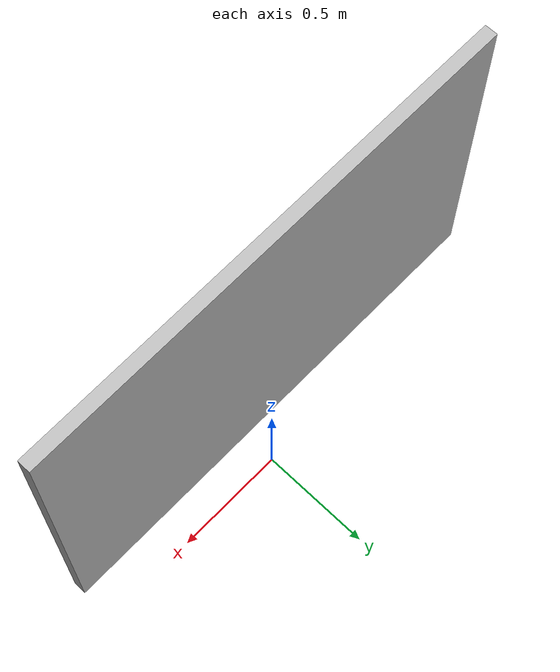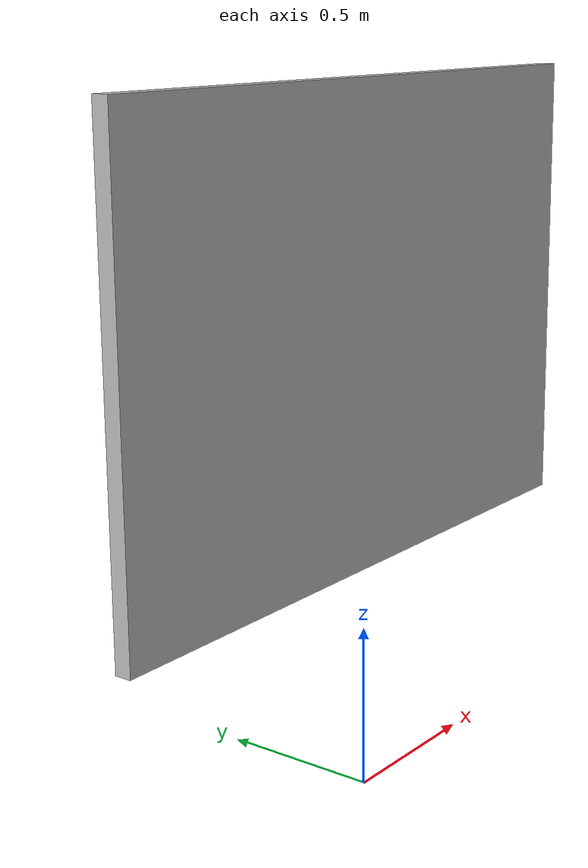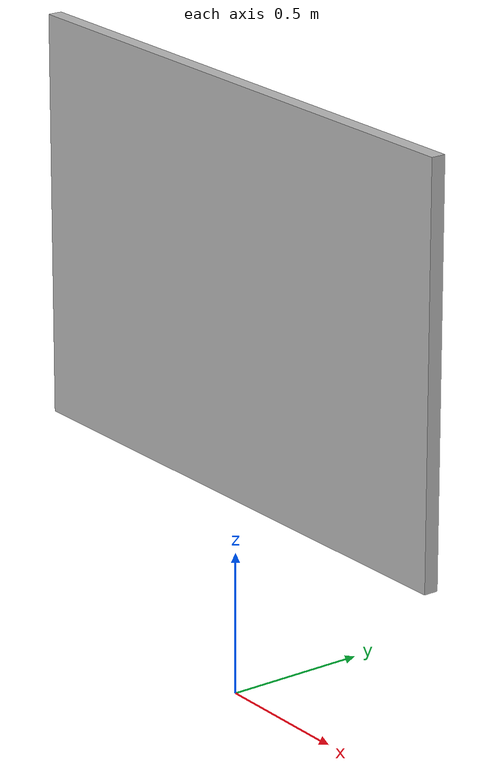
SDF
<?xml version="1.0" ?>
<sdf version="1.5">
  <model name="roomb_img3p">

      <pose>0 0 1.4 0 0 0</pose>

      <static>true</static>

      <link name="link">
      <collision name='collision'>
        <geometry>
          <box>
            <size>2 0.05 1.4</size>
          </box>
        </geometry>
      </collision>

      <visual name='visual'>
        <geometry>
          <box>
            <size>2 0.05 1.4</size>
          </box>
        </geometry>

        <material>
          <script>
            <uri>model://leobot_gazebo/models/roomb_img3p/materials/scripts</uri>
            <uri>model://leobot_gazebo/models/roomb_img3p/materials/textures</uri>
            <name>roomb/img3p</name>
          </script>
        </material>
      </visual>
    </link>
  </model>
</sdf>
